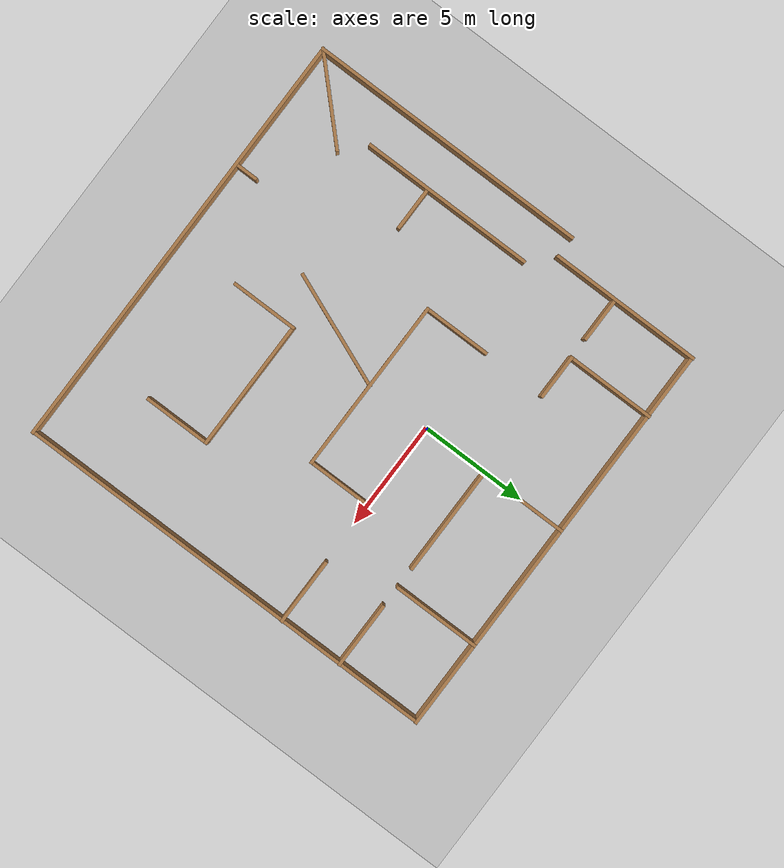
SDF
<sdf version="1.6">
 <world name="default">
  <light name="sun" type="directional">
   <pose>0 0 10 0 -0 0</pose>
   <diffuse>0.8 0.8 0.8 1</diffuse>
   <specular>0.2 0.2 0.2 1</specular>
   <attenuation>
    <range>1000</range>
    <constant>0.9</constant>
    <linear>0.01</linear>
    <quadratic>0.001</quadratic>
   </attenuation>
   <direction>-0.5 0.1 -0.9</direction>
  </light>
  <model name="ground_plane">
   <static>1</static>
   <link name="link">
    <collision name="collision">
     <geometry><plane><normal>0 0 1</normal><size>100 100</size></plane></geometry>
     <surface>
      <contact><collide_bitmask>65535</collide_bitmask></contact>
      <friction><ode><mu>100</mu><mu2>50</mu2></ode></friction>
     </surface>
    </collision>
    <visual name="visual">
     <cast_shadows>0</cast_shadows>
     <geometry><plane><normal>0 0 1</normal><size>100 100</size></plane></geometry>
     <material>
      <script><uri>file://media/materials/scripts/gazebo.material</uri><name>Gazebo/Grey</name></script>
     </material>
    </visual>
   </link>
  </model>
  <gravity>0 0 -9.8</gravity>
  <magnetic_field>6e-06 2.3e-05 -4.2e-05</magnetic_field>
  <atmosphere type="adiabatic"/>
  <physics name="default_physics" default="0" type="ode">
   <max_step_size>0.001</max_step_size>
   <real_time_factor>1</real_time_factor>
   <real_time_update_rate>1000</real_time_update_rate>
  </physics>
  <scene><ambient>0.4 0.4 0.4 1</ambient><background>0.7 0.7 0.7 1</background><shadows>1</shadows></scene>
  <spherical_coordinates>
   <surface_model>EARTH_WGS84</surface_model>
   <latitude_deg>0</latitude_deg>
   <longitude_deg>0</longitude_deg>
   <elevation>0</elevation>
   <heading_deg>0</heading_deg>
  </spherical_coordinates>
  <model name="ZY_World1">
   <pose>-0.015533 -3.00003 0 0 -0 0</pose>
   <link name="Wall_1">
    <collision name="Wall_1_Collision">
     <geometry><box><size>13.15 0.15 3</size></box></geometry>
     <pose>0 0 1.5 0 -0 0</pose>
    </collision>
    <visual name="Wall_1_Visual">
     <pose>0 0 1.5 0 -0 0</pose>
     <geometry><box><size>13.15 0.15 3</size></box></geometry>
     <material>
      <script><uri>file://media/materials/scripts/gazebo.material</uri><name>Gazebo/Wood</name></script>
      <ambient>1 1 1 1</ambient>
     </material>
     <meta><layer>0</layer></meta>
    </visual>
    <pose>-9.98447 -3.49997 0 0 -0 1.5708</pose>
   </link>
   <link name="Wall_10">
    <collision name="Wall_10_Collision">
     <geometry><box><size>4.123 0.15 3</size></box></geometry>
     <pose>0 0 1.5 0 -0 0</pose>
    </collision>
    <visual name="Wall_10_Visual">
     <pose>0 0 1.5 0 -0 0</pose>
     <geometry><box><size>4.123 0.15 3</size></box></geometry>
     <material>
      <script><uri>file://media/materials/scripts/gazebo.material</uri><name>Gazebo/Wood</name></script>
      <ambient>1 1 1 1</ambient>
     </material>
     <meta><layer>0</layer></meta>
    </visual>
    <pose>6.00253 8.01353 0 0 -0 1.5708</pose>
   </link>
   <link name="Wall_12">
    <collision name="Wall_12_Collision">
     <geometry><box><size>3.15 0.15 3</size></box></geometry>
     <pose>0 0 1.5 0 -0 0</pose>
    </collision>
    <visual name="Wall_12_Visual">
     <pose>0 0 1.5 0 -0 0</pose>
     <geometry><box><size>3.15 0.15 3</size></box></geometry>
     <material>
      <script><uri>file://media/materials/scripts/gazebo.material</uri><name>Gazebo/Wood</name></script>
      <ambient>1 1 1 1</ambient>
     </material>
     <meta><layer>0</layer></meta>
    </visual>
    <pose>8.51553 6.00003 0 0 -0 0</pose>
   </link>
   <link name="Wall_14">
    <collision name="Wall_14_Collision">
     <geometry><box><size>5.15 0.15 3</size></box></geometry>
     <pose>0 0 1.5 0 -0 0</pose>
    </collision>
    <visual name="Wall_14_Visual">
     <pose>0 0 1.5 0 -0 0</pose>
     <geometry><box><size>5.15 0.15 3</size></box></geometry>
     <material>
      <script><uri>file://media/materials/scripts/gazebo.material</uri><name>Gazebo/Wood</name></script>
      <ambient>1 1 1 1</ambient>
     </material>
     <meta><layer>0</layer></meta>
    </visual>
    <pose>2.51553 6.00003 0 0 -0 0</pose>
   </link>
   <link name="Wall_16">
    <collision name="Wall_16_Collision">
     <geometry><box><size>4.15 0.15 3</size></box></geometry>
     <pose>0 0 1.5 0 -0 0</pose>
    </collision>
    <visual name="Wall_16_Visual">
     <pose>0 0 1.5 0 -0 0</pose>
     <geometry><box><size>4.15 0.15 3</size></box></geometry>
     <material>
      <script><uri>file://media/materials/scripts/gazebo.material</uri><name>Gazebo/Wood</name></script>
      <ambient>1 1 1 1</ambient>
     </material>
     <meta><layer>0</layer></meta>
    </visual>
    <pose>0.015533 8.00003 0 0 -0 1.5708</pose>
   </link>
   <link name="Wall_18">
    <collision name="Wall_18_Collision">
     <geometry><box><size>2.15 0.15 3</size></box></geometry>
     <pose>0 0 1.5 0 -0 0</pose>
    </collision>
    <visual name="Wall_18_Visual">
     <pose>0 0 1.5 0 -0 0</pose>
     <geometry><box><size>2.15 0.15 3</size></box></geometry>
     <material>
      <script><uri>file://media/materials/scripts/gazebo.material</uri><name>Gazebo/Wood</name></script>
      <ambient>1 1 1 1</ambient>
     </material>
     <meta><layer>0</layer></meta>
    </visual>
    <pose>-4.98447 6.00003 0 0 -0 3.14159</pose>
   </link>
   <link name="Wall_20">
    <collision name="Wall_20_Collision">
     <geometry><box><size>4.15 0.15 3</size></box></geometry>
     <pose>0 0 1.5 0 -0 0</pose>
    </collision>
    <visual name="Wall_20_Visual">
     <pose>0 0 1.5 0 -0 0</pose>
     <geometry><box><size>4.15 0.15 3</size></box></geometry>
     <material>
      <script><uri>file://media/materials/scripts/gazebo.material</uri><name>Gazebo/Wood</name></script>
      <ambient>1 1 1 1</ambient>
     </material>
     <meta><layer>0</layer></meta>
    </visual>
    <pose>-5.98447 8.03103 0 0 -0 1.5708</pose>
   </link>
   <link name="Wall_22">
    <collision name="Wall_22_Collision">
     <geometry><box><size>7.15 0.15 3</size></box></geometry>
     <pose>0 0 1.5 0 -0 0</pose>
    </collision>
    <visual name="Wall_22_Visual">
     <pose>0 0 1.5 0 -0 0</pose>
     <geometry><box><size>7.15 0.15 3</size></box></geometry>
     <material>
      <script><uri>file://media/materials/scripts/gazebo.material</uri><name>Gazebo/Wood</name></script>
      <ambient>1 1 1 1</ambient>
     </material>
     <meta><layer>0</layer></meta>
    </visual>
    <pose>-9.01547 6.53103 0 0 -0 -1.5708</pose>
   </link>
   <link name="Wall_24">
    <collision name="Wall_24_Collision">
     <geometry><box><size>19.15 0.15 3</size></box></geometry>
     <pose>0 0 1.5 0 -0 0</pose>
    </collision>
    <visual name="Wall_24_Visual">
     <pose>0 0 1.5 0 -0 0</pose>
     <geometry><box><size>19.15 0.15 3</size></box></geometry>
     <material>
      <script><uri>file://media/materials/scripts/gazebo.material</uri><name>Gazebo/Wood</name></script>
      <ambient>1 1 1 1</ambient>
     </material>
     <meta><layer>0</layer></meta>
    </visual>
    <pose>0.515533 10 0 0 -0 0</pose>
   </link>
   <link name="Wall_26">
    <collision name="Wall_26_Collision">
     <geometry><box><size>8.15 0.15 3</size></box></geometry>
     <pose>0 0 1.5 0 -0 0</pose>
    </collision>
    <visual name="Wall_26_Visual">
     <pose>0 0 1.5 0 -0 0</pose>
     <geometry><box><size>8.15 0.15 3</size></box></geometry>
     <material>
      <script><uri>file://media/materials/scripts/gazebo.material</uri><name>Gazebo/Wood</name></script>
      <ambient>1 1 1 1</ambient>
     </material>
     <meta><layer>0</layer></meta>
    </visual>
    <pose>0.015533 3.3e-05 0 0 -0 0</pose>
   </link>
   <link name="Wall_28">
    <collision name="Wall_28_Collision">
     <geometry><box><size>3.15 0.15 3</size></box></geometry>
     <pose>0 0 1.5 0 -0 0</pose>
    </collision>
    <visual name="Wall_28_Visual">
     <pose>0 0 1.5 0 -0 0</pose>
     <geometry><box><size>3.15 0.15 3</size></box></geometry>
     <material>
      <script><uri>file://media/materials/scripts/gazebo.material</uri><name>Gazebo/Wood</name></script>
      <ambient>1 1 1 1</ambient>
     </material>
     <meta><layer>0</layer></meta>
    </visual>
    <pose>-3.98447 1.53103 0 0 -0 1.5708</pose>
   </link>
   <link name="Wall_30">
    <collision name="Wall_30_Collision">
     <geometry><box><size>2.15 0.15 3</size></box></geometry>
     <pose>0 0 1.5 0 -0 0</pose>
    </collision>
    <visual name="Wall_30_Visual">
     <pose>0 0 1.5 0 -0 0</pose>
     <geometry><box><size>2.15 0.15 3</size></box></geometry>
     <material>
      <script><uri>file://media/materials/scripts/gazebo.material</uri><name>Gazebo/Wood</name></script>
      <ambient>1 1 1 1</ambient>
     </material>
     <meta><layer>0</layer></meta>
    </visual>
    <pose>-7.98447 6.00003 0 0 -0 3.14159</pose>
   </link>
   <link name="Wall_32">
    <collision name="Wall_32_Collision">
     <geometry><box><size>3.15 0.15 3</size></box></geometry>
     <pose>0 0 1.5 0 -0 0</pose>
    </collision>
    <visual name="Wall_32_Visual">
     <pose>0 0 1.5 0 -0 0</pose>
     <geometry><box><size>3.15 0.15 3</size></box></geometry>
     <material>
      <script><uri>file://media/materials/scripts/gazebo.material</uri><name>Gazebo/Wood</name></script>
      <ambient>1 1 1 1</ambient>
     </material>
     <meta><layer>0</layer></meta>
    </visual>
    <pose>4.01553 1.50003 0 0 -0 1.5708</pose>
   </link>
   <link name="Wall_34">
    <collision name="Wall_34_Collision">
     <geometry><box><size>3.15 0.15 3</size></box></geometry>
     <pose>0 0 1.5 0 -0 0</pose>
    </collision>
    <visual name="Wall_34_Visual">
     <pose>0 0 1.5 0 -0 0</pose>
     <geometry><box><size>3.15 0.15 3</size></box></geometry>
     <material>
      <script><uri>file://media/materials/scripts/gazebo.material</uri><name>Gazebo/Wood</name></script>
      <ambient>1 1 1 1</ambient>
     </material>
     <meta><layer>0</layer></meta>
    </visual>
    <pose>8.51553 3.00003 0 0 -0 0</pose>
   </link>
   <link name="Wall_36">
    <collision name="Wall_36_Collision">
     <geometry><box><size>3.15 0.15 3</size></box></geometry>
     <pose>0 0 1.5 0 -0 0</pose>
    </collision>
    <visual name="Wall_36_Visual">
     <pose>0 0 1.5 0 -0 0</pose>
     <geometry><box><size>3.15 0.15 3</size></box></geometry>
     <material>
      <script><uri>file://media/materials/scripts/gazebo.material</uri><name>Gazebo/Wood</name></script>
      <ambient>1 1 1 1</ambient>
     </material>
     <meta><layer>0</layer></meta>
    </visual>
    <pose>0.015533 -5.49997 0 0 -0 -1.5708</pose>
   </link>
   <link name="Wall_38">
    <collision name="Wall_38_Collision">
     <geometry><box><size>6.15 0.15 3</size></box></geometry>
     <pose>0 0 1.5 0 -0 0</pose>
    </collision>
    <visual name="Wall_38_Visual">
     <pose>0 0 1.5 0 -0 0</pose>
     <geometry><box><size>6.15 0.15 3</size></box></geometry>
     <material>
      <script><uri>file://media/materials/scripts/gazebo.material</uri><name>Gazebo/Wood</name></script>
      <ambient>1 1 1 1</ambient>
     </material>
     <meta><layer>0</layer></meta>
    </visual>
    <pose>3.01553 -3.99997 0 0 -0 0</pose>
   </link>
   <link name="Wall_40">
    <collision name="Wall_40_Collision">
     <geometry><box><size>3.15 0.15 3</size></box></geometry>
     <pose>0 0 1.5 0 -0 0</pose>
    </collision>
    <visual name="Wall_40_Visual">
     <pose>0 0 1.5 0 -0 0</pose>
     <geometry><box><size>3.15 0.15 3</size></box></geometry>
     <material>
      <script><uri>file://media/materials/scripts/gazebo.material</uri><name>Gazebo/Wood</name></script>
      <ambient>1 1 1 1</ambient>
     </material>
     <meta><layer>0</layer></meta>
    </visual>
    <pose>6.01553 -5.49997 0 0 -0 -1.5708</pose>
   </link>
   <link name="Wall_42">
    <collision name="Wall_42_Collision">
     <geometry><box><size>4.39264 0.15 3</size></box></geometry>
     <pose>0 0 1.5 0 -0 0</pose>
    </collision>
    <visual name="Wall_42_Visual">
     <pose>0 0 1.5 0 -0 0</pose>
     <geometry><box><size>4.39264 0.15 3</size></box></geometry>
     <material>
      <script><uri>file://media/materials/scripts/gazebo.material</uri><name>Gazebo/Wood</name></script>
      <ambient>1 1 1 1</ambient>
     </material>
     <meta><layer>0</layer></meta>
    </visual>
    <pose>-8.48447 -8.49997 0 0 -0 0.785398</pose>
   </link>
   <link name="Wall_44">
    <collision name="Wall_44_Collision">
     <geometry><box><size>1.15 0.15 3</size></box></geometry>
     <pose>0 0 1.5 0 -0 0</pose>
    </collision>
    <visual name="Wall_44_Visual">
     <pose>0 0 1.5 0 -0 0</pose>
     <geometry><box><size>1.15 0.15 3</size></box></geometry>
     <material>
      <script><uri>file://media/materials/scripts/gazebo.material</uri><name>Gazebo/Wood</name></script>
      <ambient>1 1 1 1</ambient>
     </material>
     <meta><layer>0</layer></meta>
    </visual>
    <pose>-3.98447 -9.49997 0 0 -0 1.5708</pose>
   </link>
   <link name="Wall_46">
    <collision name="Wall_46_Collision">
     <geometry><box><size>8.15 0.15 3</size></box></geometry>
     <pose>0 0 1.5 0 -0 0</pose>
    </collision>
    <visual name="Wall_46_Visual">
     <pose>0 0 1.5 0 -0 0</pose>
     <geometry><box><size>8.15 0.15 3</size></box></geometry>
     <material>
      <script><uri>file://media/materials/scripts/gazebo.material</uri><name>Gazebo/Wood</name></script>
      <ambient>1 1 1 1</ambient>
     </material>
     <meta><layer>0</layer></meta>
    </visual>
    <pose>-7.98447 -1.99997 0 0 -0 -1.5708</pose>
   </link>
   <link name="Wall_48">
    <collision name="Wall_48_Collision">
     <geometry><box><size>5.53517 0.15 3</size></box></geometry>
     <pose>0 0 1.5 0 -0 0</pose>
    </collision>
    <visual name="Wall_48_Visual">
     <pose>0 0 1.5 0 -0 0</pose>
     <geometry><box><size>5.53517 0.15 3</size></box></geometry>
     <material>
      <script><uri>file://media/materials/scripts/gazebo.material</uri><name>Gazebo/Wood</name></script>
      <ambient>1 1 1 1</ambient>
     </material>
     <meta><layer>0</layer></meta>
    </visual>
    <pose>-0.984467 -2.49997 0 0 -0 -1.9513</pose>
   </link>
   <link name="Wall_50">
    <collision name="Wall_50_Collision">
     <geometry><box><size>2.15 0.15 3</size></box></geometry>
     <pose>0 0 1.5 0 -0 0</pose>
    </collision>
    <visual name="Wall_50_Visual">
     <pose>0 0 1.5 0 -0 0</pose>
     <geometry><box><size>2.15 0.15 3</size></box></geometry>
     <material>
      <script><uri>file://media/materials/scripts/gazebo.material</uri><name>Gazebo/Wood</name></script>
      <ambient>1 1 1 1</ambient>
     </material>
     <meta><layer>0</layer></meta>
    </visual>
    <pose>-6.98447 -2.99997 0 0 -0 0</pose>
   </link>
   <link name="Wall_6">
    <collision name="Wall_6_Collision">
     <geometry><box><size>20.15 0.15 3</size></box></geometry>
     <pose>0 0 1.5 0 -0 0</pose>
    </collision>
    <visual name="Wall_6_Visual">
     <pose>0 0 1.5 0 -0 0</pose>
     <geometry><box><size>20.15 0.15 3</size></box></geometry>
     <material>
      <script><uri>file://media/materials/scripts/gazebo.material</uri><name>Gazebo/Wood</name></script>
      <ambient>1 1 1 1</ambient>
     </material>
     <meta><layer>0</layer></meta>
    </visual>
    <pose>0.015533 -9.99997 0 0 -0 0</pose>
   </link>
   <link name="Wall_8">
    <collision name="Wall_8_Collision">
     <geometry><box><size>20.15 0.15 3</size></box></geometry>
     <pose>0 0 1.5 0 -0 0</pose>
    </collision>
    <visual name="Wall_8_Visual">
     <pose>0 0 1.5 0 -0 0</pose>
     <geometry><box><size>20.15 0.15 3</size></box></geometry>
     <material>
      <script><uri>file://media/materials/scripts/gazebo.material</uri><name>Gazebo/Wood</name></script>
      <ambient>1 1 1 1</ambient>
     </material>
     <meta><layer>0</layer></meta>
    </visual>
    <pose>9.99253 3.3e-05 0 0 -0 1.5708</pose>
   </link>
   <static>1</static>
  </model>
 </world>
</sdf>
